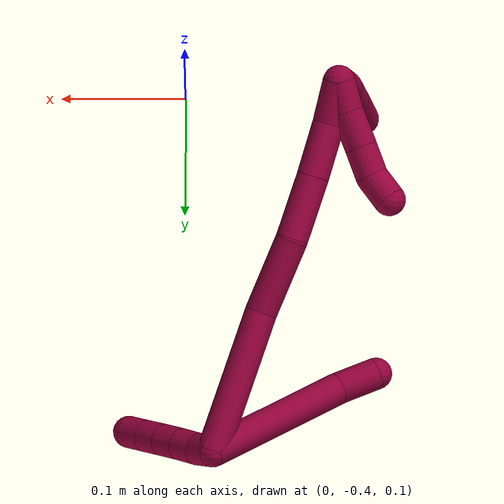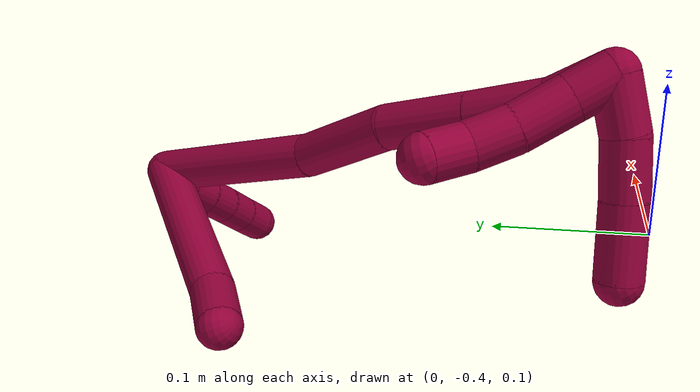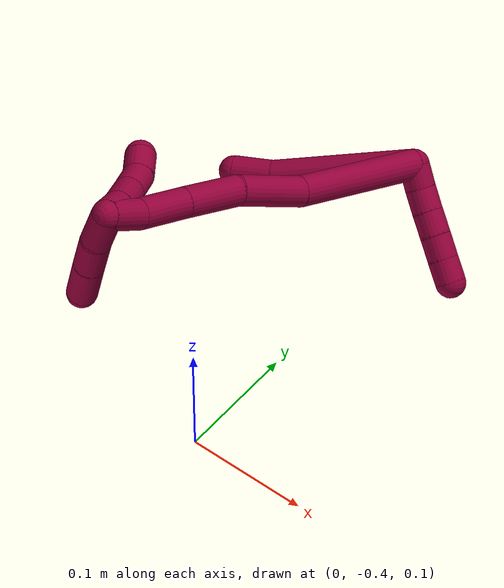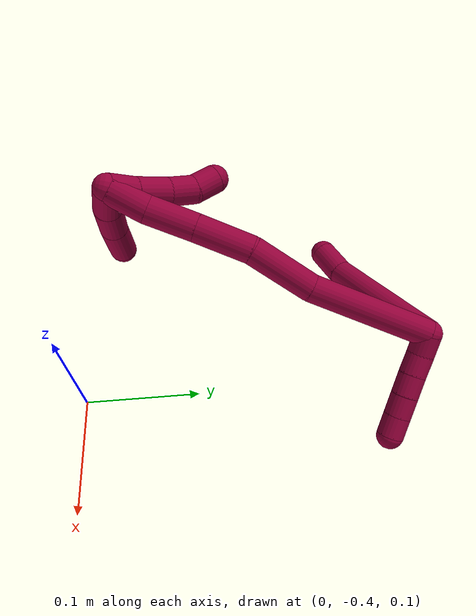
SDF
<sdf version="1.7">
 <world name="default">
  <model name="8">
   <static>0</static>
   <link name="8">
    <collision name="collision-cylinder-e_1_2_8">
     <pose>-0.03357 -0.041086 0.02507 1.02291 -0.609031 -0.349213</pose>
     <geometry><cylinder><radius>0.0125</radius><length>0.117363</length></cylinder></geometry>
     <surface>
      <friction><ode><mu>1.16</mu><mu2>1.16</mu2><slip1>0</slip1><slip2>0</slip2></ode></friction>
      <contact><ode><kp>1e+06</kp><kd>1</kd><max_vel>0</max_vel><min_depth>0.001</min_depth></ode></contact>
     </surface>
    </collision>
    <visual name="visual-cylinder-e_1_2_8">
     <pose>-0.03357 -0.041086 0.02507 1.02291 -0.609031 -0.349213</pose>
     <geometry><cylinder><radius>0.0125</radius><length>0.117363</length></cylinder></geometry>
     <material><ambient>0.584314 0 0.227451 1</ambient></material>
    </visual>
    <collision name="collision-cylinder-e_2_8_6">
     <pose>-0.078849 -0.091495 0.056642 0.961845 -0.800235 -0.434395</pose>
     <geometry><cylinder><radius>0.0125</radius><length>0.032637</length></cylinder></geometry>
     <surface>
      <friction><ode><mu>1.16</mu><mu2>1.16</mu2><slip1>0</slip1><slip2>0</slip2></ode></friction>
      <contact><ode><kp>1e+06</kp><kd>1</kd><max_vel>0</max_vel><min_depth>0.001</min_depth></ode></contact>
     </surface>
    </collision>
    <visual name="visual-cylinder-e_2_8_6">
     <pose>-0.078849 -0.091495 0.056642 0.961845 -0.800235 -0.434395</pose>
     <geometry><cylinder><radius>0.0125</radius><length>0.032637</length></cylinder></geometry>
     <material><ambient>0.584314 0 0.227451 1</ambient></material>
    </visual>
    <collision name="collision-cylinder-e_1_2_9">
     <pose>0.008402 -0.005356 -0.000847 1.72755 0.997699 1.13533</pose>
     <geometry><cylinder><radius>0.0125</radius><length>0.02</length></cylinder></geometry>
     <surface>
      <friction><ode><mu>1.16</mu><mu2>1.16</mu2><slip1>0</slip1><slip2>0</slip2></ode></friction>
      <contact><ode><kp>1e+06</kp><kd>1</kd><max_vel>0</max_vel><min_depth>0.001</min_depth></ode></contact>
     </surface>
    </collision>
    <visual name="visual-cylinder-e_1_2_9">
     <pose>0.008402 -0.005356 -0.000847 1.72755 0.997699 1.13533</pose>
     <geometry><cylinder><radius>0.0125</radius><length>0.02</length></cylinder></geometry>
     <material><ambient>0.584314 0 0.227451 1</ambient></material>
    </visual>
    <collision name="collision-cylinder-e_2_9_10">
     <pose>0.025917 -0.014807 -0.001262 1.46591 1.14638 1.05281</pose>
     <geometry><cylinder><radius>0.0125</radius><length>0.02</length></cylinder></geometry>
     <surface>
      <friction><ode><mu>1.16</mu><mu2>1.16</mu2><slip1>0</slip1><slip2>0</slip2></ode></friction>
      <contact><ode><kp>1e+06</kp><kd>1</kd><max_vel>0</max_vel><min_depth>0.001</min_depth></ode></contact>
     </surface>
    </collision>
    <visual name="visual-cylinder-e_2_9_10">
     <pose>0.025917 -0.014807 -0.001262 1.46591 1.14638 1.05281</pose>
     <geometry><cylinder><radius>0.0125</radius><length>0.02</length></cylinder></geometry>
     <material><ambient>0.584314 0 0.227451 1</ambient></material>
    </visual>
    <collision name="collision-cylinder-e_3_10_11">
     <pose>0.044194 -0.022901 -0.000643 1.52384 1.15898 1.11635</pose>
     <geometry><cylinder><radius>0.0125</radius><length>0.02</length></cylinder></geometry>
     <surface>
      <friction><ode><mu>1.16</mu><mu2>1.16</mu2><slip1>0</slip1><slip2>0</slip2></ode></friction>
      <contact><ode><kp>1e+06</kp><kd>1</kd><max_vel>0</max_vel><min_depth>0.001</min_depth></ode></contact>
     </surface>
    </collision>
    <visual name="visual-cylinder-e_3_10_11">
     <pose>0.044194 -0.022901 -0.000643 1.52384 1.15898 1.11635</pose>
     <geometry><cylinder><radius>0.0125</radius><length>0.02</length></cylinder></geometry>
     <material><ambient>0.584314 0 0.227451 1</ambient></material>
    </visual>
    <collision name="collision-cylinder-e_4_11_12">
     <pose>0.062424 -0.031118 -0.000418 1.56191 1.13521 1.12716</pose>
     <geometry><cylinder><radius>0.0125</radius><length>0.02</length></cylinder></geometry>
     <surface>
      <friction><ode><mu>1.16</mu><mu2>1.16</mu2><slip1>0</slip1><slip2>0</slip2></ode></friction>
      <contact><ode><kp>1e+06</kp><kd>1</kd><max_vel>0</max_vel><min_depth>0.001</min_depth></ode></contact>
     </surface>
    </collision>
    <visual name="visual-cylinder-e_4_11_12">
     <pose>0.062424 -0.031118 -0.000418 1.56191 1.13521 1.12716</pose>
     <geometry><cylinder><radius>0.0125</radius><length>0.02</length></cylinder></geometry>
     <material><ambient>0.584314 0 0.227451 1</ambient></material>
    </visual>
    <collision name="collision-cylinder-e_5_12_5">
     <pose>0.08062 -0.039415 -0.000259 1.54115 1.15058 1.12368</pose>
     <geometry><cylinder><radius>0.0125</radius><length>0.02</length></cylinder></geometry>
     <surface>
      <friction><ode><mu>1.16</mu><mu2>1.16</mu2><slip1>0</slip1><slip2>0</slip2></ode></friction>
      <contact><ode><kp>1e+06</kp><kd>1</kd><max_vel>0</max_vel><min_depth>0.001</min_depth></ode></contact>
     </surface>
    </collision>
    <visual name="visual-cylinder-e_5_12_5">
     <pose>0.08062 -0.039415 -0.000259 1.54115 1.15058 1.12368</pose>
     <geometry><cylinder><radius>0.0125</radius><length>0.02</length></cylinder></geometry>
     <material><ambient>0.584314 0 0.227451 1</ambient></material>
    </visual>
    <collision name="collision-cylinder-e_1_2_13">
     <pose>-0.010113 -0.012268 0.053903 0.223789 -0.180937 -0.020386</pose>
     <geometry><cylinder><radius>0.0125</radius><length>0.112397</length></cylinder></geometry>
     <surface>
      <friction><ode><mu>1.16</mu><mu2>1.16</mu2><slip1>0</slip1><slip2>0</slip2></ode></friction>
      <contact><ode><kp>1e+06</kp><kd>1</kd><max_vel>0</max_vel><min_depth>0.001</min_depth></ode></contact>
     </surface>
    </collision>
    <visual name="visual-cylinder-e_1_2_13">
     <pose>-0.010113 -0.012268 0.053903 0.223789 -0.180937 -0.020386</pose>
     <geometry><cylinder><radius>0.0125</radius><length>0.112397</length></cylinder></geometry>
     <material><ambient>0.584314 0 0.227451 1</ambient></material>
    </visual>
    <collision name="collision-cylinder-e_2_13_14">
     <pose>-0.029756 -0.025895 0.136656 0.047034 -0.318717 -0.007561</pose>
     <geometry><cylinder><radius>0.0125</radius><length>0.060829</length></cylinder></geometry>
     <surface>
      <friction><ode><mu>1.16</mu><mu2>1.16</mu2><slip1>0</slip1><slip2>0</slip2></ode></friction>
      <contact><ode><kp>1e+06</kp><kd>1</kd><max_vel>0</max_vel><min_depth>0.001</min_depth></ode></contact>
     </surface>
    </collision>
    <visual name="visual-cylinder-e_2_13_14">
     <pose>-0.029756 -0.025895 0.136656 0.047034 -0.318717 -0.007561</pose>
     <geometry><cylinder><radius>0.0125</radius><length>0.060829</length></cylinder></geometry>
     <material><ambient>0.584314 0 0.227451 1</ambient></material>
    </visual>
    <collision name="collision-cylinder-e_3_14_15">
     <pose>-0.043757 -0.032323 0.189693 0.206655 -0.178944 -0.018605</pose>
     <geometry><cylinder><radius>0.0125</radius><length>0.050225</length></cylinder></geometry>
     <surface>
      <friction><ode><mu>1.16</mu><mu2>1.16</mu2><slip1>0</slip1><slip2>0</slip2></ode></friction>
      <contact><ode><kp>1e+06</kp><kd>1</kd><max_vel>0</max_vel><min_depth>0.001</min_depth></ode></contact>
     </surface>
    </collision>
    <visual name="visual-cylinder-e_3_14_15">
     <pose>-0.043757 -0.032323 0.189693 0.206655 -0.178944 -0.018605</pose>
     <geometry><cylinder><radius>0.0125</radius><length>0.050225</length></cylinder></geometry>
     <material><ambient>0.584314 0 0.227451 1</ambient></material>
    </visual>
    <collision name="collision-cylinder-e_4_15_16">
     <pose>-0.051417 -0.04136 0.234735 0.18794 -0.149163 -0.014084</pose>
     <geometry><cylinder><radius>0.0125</radius><length>0.042938</length></cylinder></geometry>
     <surface>
      <friction><ode><mu>1.16</mu><mu2>1.16</mu2><slip1>0</slip1><slip2>0</slip2></ode></friction>
      <contact><ode><kp>1e+06</kp><kd>1</kd><max_vel>0</max_vel><min_depth>0.001</min_depth></ode></contact>
     </surface>
    </collision>
    <visual name="visual-cylinder-e_4_15_16">
     <pose>-0.051417 -0.04136 0.234735 0.18794 -0.149163 -0.014084</pose>
     <geometry><cylinder><radius>0.0125</radius><length>0.042938</length></cylinder></geometry>
     <material><ambient>0.584314 0 0.227451 1</ambient></material>
    </visual>
    <collision name="collision-cylinder-e_5_16_1">
     <pose>-0.057758 -0.044237 0.272063 -0.066075 -0.188622 0.006252</pose>
     <geometry><cylinder><radius>0.0125</radius><length>0.033611</length></cylinder></geometry>
     <surface>
      <friction><ode><mu>1.16</mu><mu2>1.16</mu2><slip1>0</slip1><slip2>0</slip2></ode></friction>
      <contact><ode><kp>1e+06</kp><kd>1</kd><max_vel>0</max_vel><min_depth>0.001</min_depth></ode></contact>
     </surface>
    </collision>
    <visual name="visual-cylinder-e_5_16_1">
     <pose>-0.057758 -0.044237 0.272063 -0.066075 -0.188622 0.006252</pose>
     <geometry><cylinder><radius>0.0125</radius><length>0.033611</length></cylinder></geometry>
     <material><ambient>0.584314 0 0.227451 1</ambient></material>
    </visual>
    <collision name="collision-cylinder-e_1_1_17">
     <pose>-0.058736 -0.057593 0.286195 1.73137 0.147453 0.173139</pose>
     <geometry><cylinder><radius>0.0125</radius><length>0.02959</length></cylinder></geometry>
     <surface>
      <friction><ode><mu>1.16</mu><mu2>1.16</mu2><slip1>0</slip1><slip2>0</slip2></ode></friction>
      <contact><ode><kp>1e+06</kp><kd>1</kd><max_vel>0</max_vel><min_depth>0.001</min_depth></ode></contact>
     </surface>
    </collision>
    <visual name="visual-cylinder-e_1_1_17">
     <pose>-0.058736 -0.057593 0.286195 1.73137 0.147453 0.173139</pose>
     <geometry><cylinder><radius>0.0125</radius><length>0.02959</length></cylinder></geometry>
     <material><ambient>0.584314 0 0.227451 1</ambient></material>
    </visual>
    <collision name="collision-cylinder-e_2_17_18">
     <pose>-0.054556 -0.086413 0.27874 1.91266 0.130772 0.185073</pose>
     <geometry><cylinder><radius>0.0125</radius><length>0.030776</length></cylinder></geometry>
     <surface>
      <friction><ode><mu>1.16</mu><mu2>1.16</mu2><slip1>0</slip1><slip2>0</slip2></ode></friction>
      <contact><ode><kp>1e+06</kp><kd>1</kd><max_vel>0</max_vel><min_depth>0.001</min_depth></ode></contact>
     </surface>
    </collision>
    <visual name="visual-cylinder-e_2_17_18">
     <pose>-0.054556 -0.086413 0.27874 1.91266 0.130772 0.185073</pose>
     <geometry><cylinder><radius>0.0125</radius><length>0.030776</length></cylinder></geometry>
     <material><ambient>0.584314 0 0.227451 1</ambient></material>
    </visual>
    <collision name="collision-cylinder-e_3_18_4">
     <pose>-0.050605 -0.118975 0.266001 1.96773 0.098256 0.147578</pose>
     <geometry><cylinder><radius>0.0125</radius><length>0.039635</length></cylinder></geometry>
     <surface>
      <friction><ode><mu>1.16</mu><mu2>1.16</mu2><slip1>0</slip1><slip2>0</slip2></ode></friction>
      <contact><ode><kp>1e+06</kp><kd>1</kd><max_vel>0</max_vel><min_depth>0.001</min_depth></ode></contact>
     </surface>
    </collision>
    <visual name="visual-cylinder-e_3_18_4">
     <pose>-0.050605 -0.118975 0.266001 1.96773 0.098256 0.147578</pose>
     <geometry><cylinder><radius>0.0125</radius><length>0.039635</length></cylinder></geometry>
     <material><ambient>0.584314 0 0.227451 1</ambient></material>
    </visual>
    <collision name="collision-cylinder-e_1_1_19">
     <pose>-0.06426 -0.045367 0.277527 2.94258 -0.289963 -1.9421</pose>
     <geometry><cylinder><radius>0.0125</radius><length>0.023436</length></cylinder></geometry>
     <surface>
      <friction><ode><mu>1.16</mu><mu2>1.16</mu2><slip1>0</slip1><slip2>0</slip2></ode></friction>
      <contact><ode><kp>1e+06</kp><kd>1</kd><max_vel>0</max_vel><min_depth>0.001</min_depth></ode></contact>
     </surface>
    </collision>
    <visual name="visual-cylinder-e_1_1_19">
     <pose>-0.06426 -0.045367 0.277527 2.94258 -0.289963 -1.9421</pose>
     <geometry><cylinder><radius>0.0125</radius><length>0.023436</length></cylinder></geometry>
     <material><ambient>0.584314 0 0.227451 1</ambient></material>
    </visual>
    <collision name="collision-cylinder-e_2_19_20">
     <pose>-0.073495 -0.05046 0.25326 2.92824 -0.409226 -2.18883</pose>
     <geometry><cylinder><radius>0.0125</radius><length>0.029578</length></cylinder></geometry>
     <surface>
      <friction><ode><mu>1.16</mu><mu2>1.16</mu2><slip1>0</slip1><slip2>0</slip2></ode></friction>
      <contact><ode><kp>1e+06</kp><kd>1</kd><max_vel>0</max_vel><min_depth>0.001</min_depth></ode></contact>
     </surface>
    </collision>
    <visual name="visual-cylinder-e_2_19_20">
     <pose>-0.073495 -0.05046 0.25326 2.92824 -0.409226 -2.18883</pose>
     <geometry><cylinder><radius>0.0125</radius><length>0.029578</length></cylinder></geometry>
     <material><ambient>0.584314 0 0.227451 1</ambient></material>
    </visual>
    <collision name="collision-cylinder-e_3_20_21">
     <pose>-0.084651 -0.054071 0.229005 3.07451 -0.446171 -2.84791</pose>
     <geometry><cylinder><radius>0.0125</radius><length>0.024431</length></cylinder></geometry>
     <surface>
      <friction><ode><mu>1.16</mu><mu2>1.16</mu2><slip1>0</slip1><slip2>0</slip2></ode></friction>
      <contact><ode><kp>1e+06</kp><kd>1</kd><max_vel>0</max_vel><min_depth>0.001</min_depth></ode></contact>
     </surface>
    </collision>
    <visual name="visual-cylinder-e_3_20_21">
     <pose>-0.084651 -0.054071 0.229005 3.07451 -0.446171 -2.84791</pose>
     <geometry><cylinder><radius>0.0125</radius><length>0.024431</length></cylinder></geometry>
     <material><ambient>0.584314 0 0.227451 1</ambient></material>
    </visual>
    <collision name="collision-cylinder-e_4_21_3">
     <pose>-0.09782 -0.054568 0.209963 -3.11151 -0.77586 3.06801</pose>
     <geometry><cylinder><radius>0.0125</radius><length>0.022555</length></cylinder></geometry>
     <surface>
      <friction><ode><mu>1.16</mu><mu2>1.16</mu2><slip1>0</slip1><slip2>0</slip2></ode></friction>
      <contact><ode><kp>1e+06</kp><kd>1</kd><max_vel>0</max_vel><min_depth>0.001</min_depth></ode></contact>
     </surface>
    </collision>
    <visual name="visual-cylinder-e_4_21_3">
     <pose>-0.09782 -0.054568 0.209963 -3.11151 -0.77586 3.06801</pose>
     <geometry><cylinder><radius>0.0125</radius><length>0.022555</length></cylinder></geometry>
     <material><ambient>0.584314 0 0.227451 1</ambient></material>
    </visual>
    <collision name="collision-sphere-3">
     <pose>-0.105717 -0.054326 0.201917 0 -0 0</pose>
     <geometry><sphere><radius>0.0125</radius></sphere></geometry>
     <surface>
      <friction><ode><mu>1.16</mu><mu2>1.16</mu2><slip1>0</slip1><slip2>0</slip2></ode></friction>
      <contact><ode><kp>1e+06</kp><kd>1</kd><max_vel>0</max_vel><min_depth>0.001</min_depth></ode></contact>
     </surface>
    </collision>
    <visual name="visual-sphere-3">
     <pose>-0.105717 -0.054326 0.201917 0 -0 0</pose>
     <geometry><sphere><radius>0.0125</radius></sphere></geometry>
     <material><ambient>0.584314 0 0.227451 1</ambient></material>
    </visual>
    <collision name="collision-sphere-21">
     <pose>-0.089922 -0.05481 0.21801 0 -0 0</pose>
     <geometry><sphere><radius>0.0125</radius></sphere></geometry>
     <surface>
      <friction><ode><mu>1.16</mu><mu2>1.16</mu2><slip1>0</slip1><slip2>0</slip2></ode></friction>
      <contact><ode><kp>1e+06</kp><kd>1</kd><max_vel>0</max_vel><min_depth>0.001</min_depth></ode></contact>
     </surface>
    </collision>
    <visual name="visual-sphere-21">
     <pose>-0.089922 -0.05481 0.21801 0 -0 0</pose>
     <geometry><sphere><radius>0.0125</radius></sphere></geometry>
     <material><ambient>0.584314 0 0.227451 1</ambient></material>
    </visual>
    <collision name="collision-sphere-20">
     <pose>-0.079379 -0.053332 0.24 0 -0 0</pose>
     <geometry><sphere><radius>0.0125</radius></sphere></geometry>
     <surface>
      <friction><ode><mu>1.16</mu><mu2>1.16</mu2><slip1>0</slip1><slip2>0</slip2></ode></friction>
      <contact><ode><kp>1e+06</kp><kd>1</kd><max_vel>0</max_vel><min_depth>0.001</min_depth></ode></contact>
     </surface>
    </collision>
    <visual name="visual-sphere-20">
     <pose>-0.079379 -0.053332 0.24 0 -0 0</pose>
     <geometry><sphere><radius>0.0125</radius></sphere></geometry>
     <material><ambient>0.584314 0 0.227451 1</ambient></material>
    </visual>
    <collision name="collision-sphere-19">
     <pose>-0.06761 -0.047587 0.26652 0 -0 0</pose>
     <geometry><sphere><radius>0.0125</radius></sphere></geometry>
     <surface>
      <friction><ode><mu>1.16</mu><mu2>1.16</mu2><slip1>0</slip1><slip2>0</slip2></ode></friction>
      <contact><ode><kp>1e+06</kp><kd>1</kd><max_vel>0</max_vel><min_depth>0.001</min_depth></ode></contact>
     </surface>
    </collision>
    <visual name="visual-sphere-19">
     <pose>-0.06761 -0.047587 0.26652 0 -0 0</pose>
     <geometry><sphere><radius>0.0125</radius></sphere></geometry>
     <material><ambient>0.584314 0 0.227451 1</ambient></material>
    </visual>
    <collision name="collision-sphere-11">
     <pose>0.053358 -0.026899 -0.000455 0 -0 0</pose>
     <geometry><sphere><radius>0.0125</radius></sphere></geometry>
     <surface>
      <friction><ode><mu>1.16</mu><mu2>1.16</mu2><slip1>0</slip1><slip2>0</slip2></ode></friction>
      <contact><ode><kp>1e+06</kp><kd>1</kd><max_vel>0</max_vel><min_depth>0.001</min_depth></ode></contact>
     </surface>
    </collision>
    <visual name="visual-sphere-11">
     <pose>0.053358 -0.026899 -0.000455 0 -0 0</pose>
     <geometry><sphere><radius>0.0125</radius></sphere></geometry>
     <material><ambient>0.584314 0 0.227451 1</ambient></material>
    </visual>
    <collision name="collision-sphere-10">
     <pose>0.03503 -0.018902 -0.000831 0 -0 0</pose>
     <geometry><sphere><radius>0.0125</radius></sphere></geometry>
     <surface>
      <friction><ode><mu>1.16</mu><mu2>1.16</mu2><slip1>0</slip1><slip2>0</slip2></ode></friction>
      <contact><ode><kp>1e+06</kp><kd>1</kd><max_vel>0</max_vel><min_depth>0.001</min_depth></ode></contact>
     </surface>
    </collision>
    <visual name="visual-sphere-10">
     <pose>0.03503 -0.018902 -0.000831 0 -0 0</pose>
     <geometry><sphere><radius>0.0125</radius></sphere></geometry>
     <material><ambient>0.584314 0 0.227451 1</ambient></material>
    </visual>
    <collision name="collision-sphere-6">
     <pose>-0.090558 -0.100818 0.063144 0 -0 0</pose>
     <geometry><sphere><radius>0.0125</radius></sphere></geometry>
     <surface>
      <friction><ode><mu>1.16</mu><mu2>1.16</mu2><slip1>0</slip1><slip2>0</slip2></ode></friction>
      <contact><ode><kp>1e+06</kp><kd>1</kd><max_vel>0</max_vel><min_depth>0.001</min_depth></ode></contact>
     </surface>
    </collision>
    <visual name="visual-sphere-6">
     <pose>-0.090558 -0.100818 0.063144 0 -0 0</pose>
     <geometry><sphere><radius>0.0125</radius></sphere></geometry>
     <material><ambient>0.584314 0 0.227451 1</ambient></material>
    </visual>
    <collision name="collision-sphere-9">
     <pose>0.016805 -0.010712 -0.001693 0 -0 0</pose>
     <geometry><sphere><radius>0.0125</radius></sphere></geometry>
     <surface>
      <friction><ode><mu>1.16</mu><mu2>1.16</mu2><slip1>0</slip1><slip2>0</slip2></ode></friction>
      <contact><ode><kp>1e+06</kp><kd>1</kd><max_vel>0</max_vel><min_depth>0.001</min_depth></ode></contact>
     </surface>
    </collision>
    <visual name="visual-sphere-9">
     <pose>0.016805 -0.010712 -0.001693 0 -0 0</pose>
     <geometry><sphere><radius>0.0125</radius></sphere></geometry>
     <material><ambient>0.584314 0 0.227451 1</ambient></material>
    </visual>
    <collision name="collision-sphere-2">
     <geometry><sphere><radius>0.0125</radius></sphere></geometry>
     <surface>
      <friction><ode><mu>1.16</mu><mu2>1.16</mu2><slip1>0</slip1><slip2>0</slip2></ode></friction>
      <contact><ode><kp>1e+06</kp><kd>1</kd><max_vel>0</max_vel><min_depth>0.001</min_depth></ode></contact>
     </surface>
    </collision>
    <visual name="visual-sphere-2">
     <geometry><sphere><radius>0.0125</radius></sphere></geometry>
     <material><ambient>0.584314 0 0.227451 1</ambient></material>
    </visual>
    <collision name="collision-sphere-8">
     <pose>-0.06714 -0.082171 0.050141 0 -0 0</pose>
     <geometry><sphere><radius>0.0125</radius></sphere></geometry>
     <surface>
      <friction><ode><mu>1.16</mu><mu2>1.16</mu2><slip1>0</slip1><slip2>0</slip2></ode></friction>
      <contact><ode><kp>1e+06</kp><kd>1</kd><max_vel>0</max_vel><min_depth>0.001</min_depth></ode></contact>
     </surface>
    </collision>
    <visual name="visual-sphere-8">
     <pose>-0.06714 -0.082171 0.050141 0 -0 0</pose>
     <geometry><sphere><radius>0.0125</radius></sphere></geometry>
     <material><ambient>0.584314 0 0.227451 1</ambient></material>
    </visual>
    <collision name="collision-sphere-12">
     <pose>0.07149 -0.035337 -0.00038 0 -0 0</pose>
     <geometry><sphere><radius>0.0125</radius></sphere></geometry>
     <surface>
      <friction><ode><mu>1.16</mu><mu2>1.16</mu2><slip1>0</slip1><slip2>0</slip2></ode></friction>
      <contact><ode><kp>1e+06</kp><kd>1</kd><max_vel>0</max_vel><min_depth>0.001</min_depth></ode></contact>
     </surface>
    </collision>
    <visual name="visual-sphere-12">
     <pose>0.07149 -0.035337 -0.00038 0 -0 0</pose>
     <geometry><sphere><radius>0.0125</radius></sphere></geometry>
     <material><ambient>0.584314 0 0.227451 1</ambient></material>
    </visual>
    <collision name="collision-sphere-5">
     <pose>0.08975 -0.043493 -0.000138 0 -0 0</pose>
     <geometry><sphere><radius>0.0125</radius></sphere></geometry>
     <surface>
      <friction><ode><mu>1.16</mu><mu2>1.16</mu2><slip1>0</slip1><slip2>0</slip2></ode></friction>
      <contact><ode><kp>1e+06</kp><kd>1</kd><max_vel>0</max_vel><min_depth>0.001</min_depth></ode></contact>
     </surface>
    </collision>
    <visual name="visual-sphere-5">
     <pose>0.08975 -0.043493 -0.000138 0 -0 0</pose>
     <geometry><sphere><radius>0.0125</radius></sphere></geometry>
     <material><ambient>0.584314 0 0.227451 1</ambient></material>
    </visual>
    <collision name="collision-sphere-13">
     <pose>-0.020226 -0.024537 0.107805 0 -0 0</pose>
     <geometry><sphere><radius>0.0125</radius></sphere></geometry>
     <surface>
      <friction><ode><mu>1.16</mu><mu2>1.16</mu2><slip1>0</slip1><slip2>0</slip2></ode></friction>
      <contact><ode><kp>1e+06</kp><kd>1</kd><max_vel>0</max_vel><min_depth>0.001</min_depth></ode></contact>
     </surface>
    </collision>
    <visual name="visual-sphere-13">
     <pose>-0.020226 -0.024537 0.107805 0 -0 0</pose>
     <geometry><sphere><radius>0.0125</radius></sphere></geometry>
     <material><ambient>0.584314 0 0.227451 1</ambient></material>
    </visual>
    <collision name="collision-sphere-14">
     <pose>-0.039287 -0.027253 0.165507 0 -0 0</pose>
     <geometry><sphere><radius>0.0125</radius></sphere></geometry>
     <surface>
      <friction><ode><mu>1.16</mu><mu2>1.16</mu2><slip1>0</slip1><slip2>0</slip2></ode></friction>
      <contact><ode><kp>1e+06</kp><kd>1</kd><max_vel>0</max_vel><min_depth>0.001</min_depth></ode></contact>
     </surface>
    </collision>
    <visual name="visual-sphere-14">
     <pose>-0.039287 -0.027253 0.165507 0 -0 0</pose>
     <geometry><sphere><radius>0.0125</radius></sphere></geometry>
     <material><ambient>0.584314 0 0.227451 1</ambient></material>
    </visual>
    <collision name="collision-sphere-15">
     <pose>-0.048226 -0.037394 0.213879 0 -0 0</pose>
     <geometry><sphere><radius>0.0125</radius></sphere></geometry>
     <surface>
      <friction><ode><mu>1.16</mu><mu2>1.16</mu2><slip1>0</slip1><slip2>0</slip2></ode></friction>
      <contact><ode><kp>1e+06</kp><kd>1</kd><max_vel>0</max_vel><min_depth>0.001</min_depth></ode></contact>
     </surface>
    </collision>
    <visual name="visual-sphere-15">
     <pose>-0.048226 -0.037394 0.213879 0 -0 0</pose>
     <geometry><sphere><radius>0.0125</radius></sphere></geometry>
     <material><ambient>0.584314 0 0.227451 1</ambient></material>
    </visual>
    <collision name="collision-sphere-16">
     <pose>-0.054607 -0.045327 0.255592 0 -0 0</pose>
     <geometry><sphere><radius>0.0125</radius></sphere></geometry>
     <surface>
      <friction><ode><mu>1.16</mu><mu2>1.16</mu2><slip1>0</slip1><slip2>0</slip2></ode></friction>
      <contact><ode><kp>1e+06</kp><kd>1</kd><max_vel>0</max_vel><min_depth>0.001</min_depth></ode></contact>
     </surface>
    </collision>
    <visual name="visual-sphere-16">
     <pose>-0.054607 -0.045327 0.255592 0 -0 0</pose>
     <geometry><sphere><radius>0.0125</radius></sphere></geometry>
     <material><ambient>0.584314 0 0.227451 1</ambient></material>
    </visual>
    <collision name="collision-sphere-1">
     <pose>-0.06091 -0.043147 0.288535 0 -0 0</pose>
     <geometry><sphere><radius>0.0125</radius></sphere></geometry>
     <surface>
      <friction><ode><mu>1.16</mu><mu2>1.16</mu2><slip1>0</slip1><slip2>0</slip2></ode></friction>
      <contact><ode><kp>1e+06</kp><kd>1</kd><max_vel>0</max_vel><min_depth>0.001</min_depth></ode></contact>
     </surface>
    </collision>
    <visual name="visual-sphere-1">
     <pose>-0.06091 -0.043147 0.288535 0 -0 0</pose>
     <geometry><sphere><radius>0.0125</radius></sphere></geometry>
     <material><ambient>0.584314 0 0.227451 1</ambient></material>
    </visual>
    <collision name="collision-sphere-18">
     <pose>-0.052549 -0.100786 0.273625 0 -0 0</pose>
     <geometry><sphere><radius>0.0125</radius></sphere></geometry>
     <surface>
      <friction><ode><mu>1.16</mu><mu2>1.16</mu2><slip1>0</slip1><slip2>0</slip2></ode></friction>
      <contact><ode><kp>1e+06</kp><kd>1</kd><max_vel>0</max_vel><min_depth>0.001</min_depth></ode></contact>
     </surface>
    </collision>
    <visual name="visual-sphere-18">
     <pose>-0.052549 -0.100786 0.273625 0 -0 0</pose>
     <geometry><sphere><radius>0.0125</radius></sphere></geometry>
     <material><ambient>0.584314 0 0.227451 1</ambient></material>
    </visual>
    <collision name="collision-sphere-17">
     <pose>-0.056562 -0.072039 0.283855 0 -0 0</pose>
     <geometry><sphere><radius>0.0125</radius></sphere></geometry>
     <surface>
      <friction><ode><mu>1.16</mu><mu2>1.16</mu2><slip1>0</slip1><slip2>0</slip2></ode></friction>
      <contact><ode><kp>1e+06</kp><kd>1</kd><max_vel>0</max_vel><min_depth>0.001</min_depth></ode></contact>
     </surface>
    </collision>
    <visual name="visual-sphere-17">
     <pose>-0.056562 -0.072039 0.283855 0 -0 0</pose>
     <geometry><sphere><radius>0.0125</radius></sphere></geometry>
     <material><ambient>0.584314 0 0.227451 1</ambient></material>
    </visual>
    <collision name="collision-sphere-4">
     <pose>-0.048661 -0.137163 0.258377 0 -0 0</pose>
     <geometry><sphere><radius>0.0125</radius></sphere></geometry>
     <surface>
      <friction><ode><mu>1.16</mu><mu2>1.16</mu2><slip1>0</slip1><slip2>0</slip2></ode></friction>
      <contact><ode><kp>1e+06</kp><kd>1</kd><max_vel>0</max_vel><min_depth>0.001</min_depth></ode></contact>
     </surface>
    </collision>
    <visual name="visual-sphere-4">
     <pose>-0.048661 -0.137163 0.258377 0 -0 0</pose>
     <geometry><sphere><radius>0.0125</radius></sphere></geometry>
     <material><ambient>0.584314 0 0.227451 1</ambient></material>
    </visual>
    <inertial>
     <pose>-0.033003 -0.042809 0.133013 0 -0 0</pose>
     <mass>0.75</mass>
     <inertia>
      <ixx>0.000235</ixx>
      <ixy>0</ixy>
      <ixz>0</ixz>
      <iyy>0.000203</iyy>
      <iyz>0</iyz>
      <izz>0.000278</izz>
     </inertia>
    </inertial>
   </link>
   <pose>-0.022627 -0.093392 0.137165 1.11858 0.322287 -0.240898</pose>
  </model>
 </world>
</sdf>
